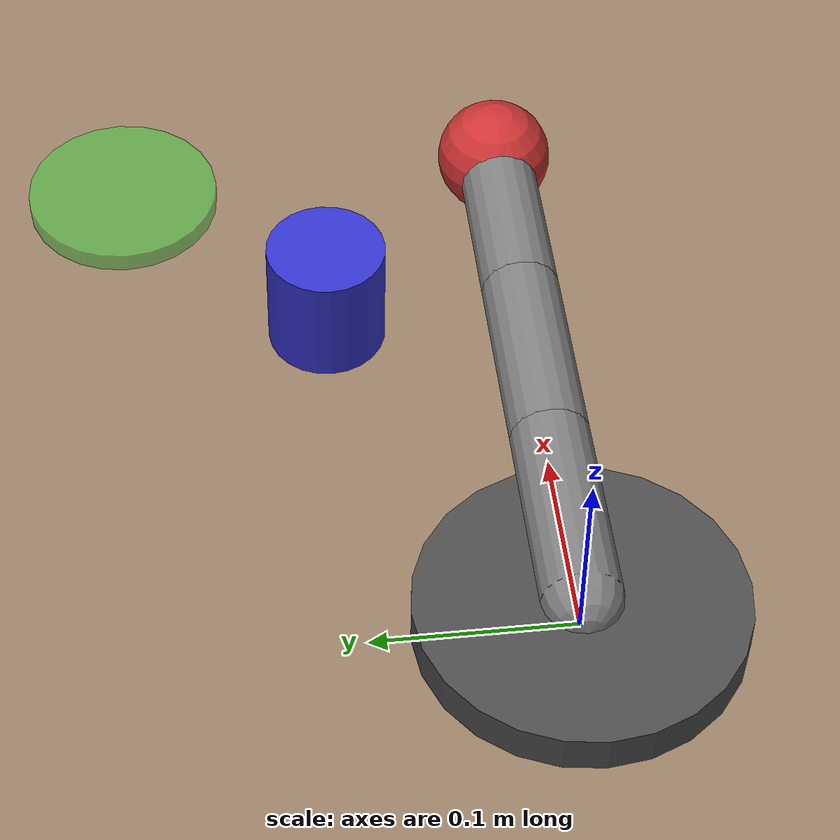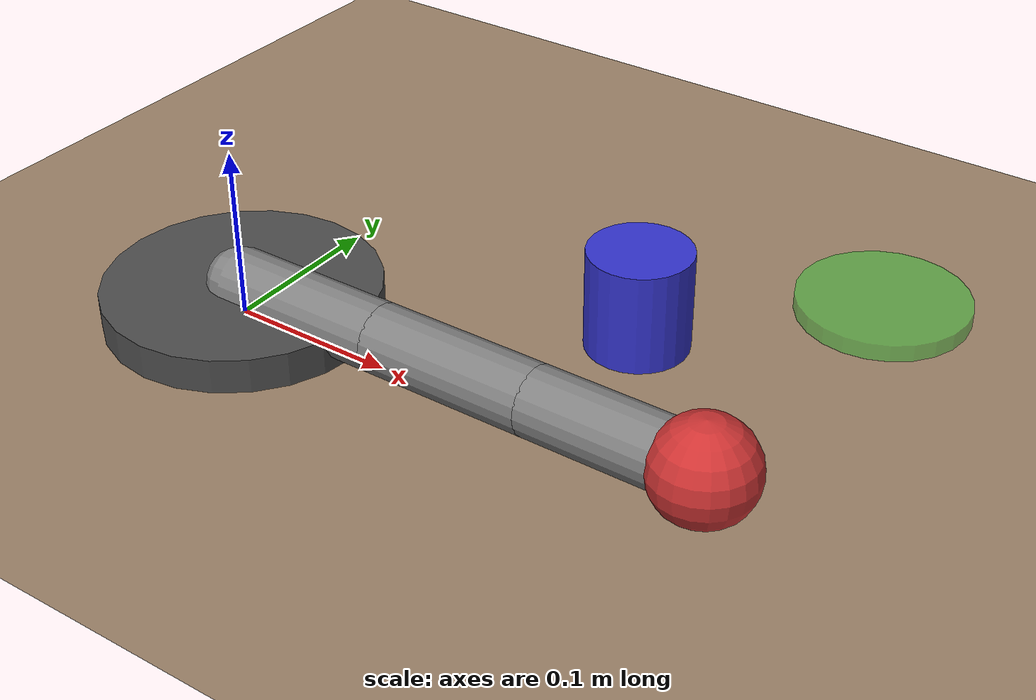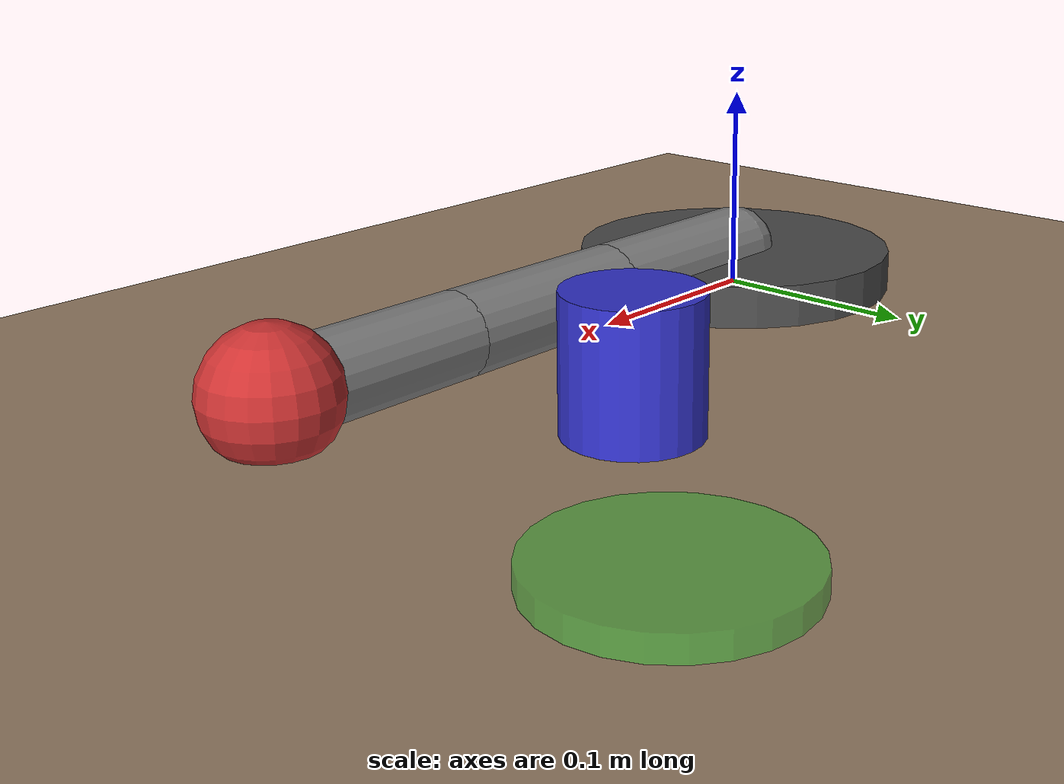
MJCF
<!-- Pusher: 3-DOF planar arm pushing object to target
     Based on MuJoCo Gymnasium Pusher-v4 environment
     Task: Control arm to push a cylinder to a goal position -->
<mujoco model="pusher">
    <option timestep="0.02" gravity="0 0 -9.81"/>

    <default>
        <joint damping="0.5" armature="0.01"/>
        <geom friction="1 0.5 0.01"/>
    </default>

    <worldbody>
        <!-- Table surface -->
        <geom name="table" type="plane" size="1 1 0.1" rgba="0.6 0.5 0.4 1"/>

        <!-- Robot base -->
        <body name="base" pos="0 0 0">
            <geom type="cylinder" size="0.08 0.02" rgba="0.3 0.3 0.3 1"/>

            <!-- Shoulder link -->
            <body name="r_shoulder" pos="0 0 0.02">
                <joint name="r_shoulder_pan_joint" type="hinge" axis="0 0 1" range="-2.28 1.71"/>
                <geom type="capsule" fromto="0 0 0 0.1 0 0" size="0.02" rgba="0.5 0.5 0.5 1"/>

                <!-- Upper arm -->
                <body name="r_upper_arm" pos="0.1 0 0">
                    <joint name="r_shoulder_lift_joint" type="hinge" axis="0 0 1" range="-0.52 1.39"/>
                    <geom type="capsule" fromto="0 0 0 0.1 0 0" size="0.02" rgba="0.5 0.5 0.5 1"/>

                    <!-- Forearm -->
                    <body name="r_forearm" pos="0.1 0 0">
                        <joint name="r_elbow_flex_joint" type="hinge" axis="0 0 1" range="-2.32 0"/>
                        <geom type="capsule" fromto="0 0 0 0.1 0 0" size="0.02" rgba="0.5 0.5 0.5 1"/>

                        <!-- Wrist / End effector -->
                        <body name="r_wrist" pos="0.1 0 0">
                            <geom name="fingertip" type="sphere" size="0.03" rgba="0.8 0.2 0.2 1"/>
                        </body>
                    </body>
                </body>
            </body>
        </body>

        <!-- Object to push -->
        <body name="object" pos="0.2 0.1 0.03">
            <joint name="object_x" type="slide" axis="1 0 0" damping="0.01"/>
            <joint name="object_y" type="slide" axis="0 1 0" damping="0.01"/>
            <geom name="object" type="cylinder" size="0.03 0.03" mass="0.1" rgba="0.2 0.2 0.8 1"/>
        </body>

        <!-- Goal position marker -->
        <body name="goal" pos="0.3 0.2 0.01">
            <geom name="goal" type="cylinder" size="0.05 0.005" rgba="0.2 0.8 0.2 0.5"/>
        </body>
    </worldbody>

    <actuator>
        <motor joint="r_shoulder_pan_joint" ctrlrange="-2 2" gear="100"/>
        <motor joint="r_shoulder_lift_joint" ctrlrange="-2 2" gear="100"/>
        <motor joint="r_elbow_flex_joint" ctrlrange="-2 2" gear="100"/>
    </actuator>

    <sensor>
        <!-- Robot state -->
        <jointpos joint="r_shoulder_pan_joint"/>
        <jointpos joint="r_shoulder_lift_joint"/>
        <jointpos joint="r_elbow_flex_joint"/>
        <jointvel joint="r_shoulder_pan_joint"/>
        <jointvel joint="r_shoulder_lift_joint"/>
        <jointvel joint="r_elbow_flex_joint"/>
        <!-- End effector position -->
        <framepos objtype="geom" objname="fingertip"/>
        <!-- Object position -->
        <framepos objtype="body" objname="object"/>
        <!-- Goal position -->
        <framepos objtype="body" objname="goal"/>
    </sensor>
</mujoco>
